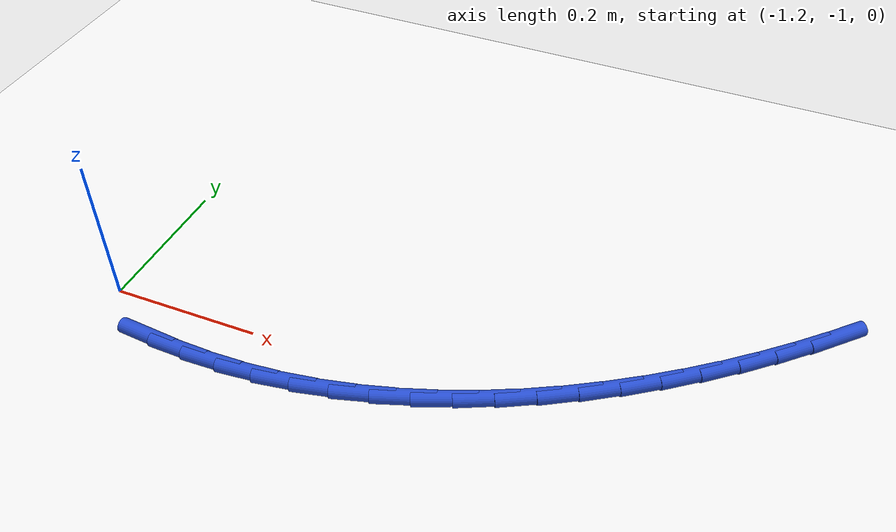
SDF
<sdf version="1.6">
 <world name="default">
  <model name="ground_plane">
   <static>1</static>
   <link name="link">
    <collision name="collision">
     <geometry><plane><normal>0 0 1</normal><size>100 100</size></plane></geometry>
     <surface><friction><ode><mu>100</mu><mu2>50</mu2></ode></friction></surface>
    </collision>
    <visual name="visual">
     <cast_shadows>0</cast_shadows>
     <geometry><plane><normal>0 0 1</normal><size>100 100</size></plane></geometry>
     <material>
      <script><uri>file://media/materials/scripts/gazebo.material</uri><name>Gazebo/WhiteGlow</name></script>
     </material>
    </visual>
   </link>
  </model>
  <model name="line">
   <link name="link_115">
    <pose>-1.1120504153098336 -1.0596894403482455 0.01 0 1.57 -0.08563635293027172</pose>
    <collision name="collision">
     <geometry><cylinder><radius>0.01</radius><length>0.08</length></cylinder></geometry>
    </collision>
    <visual name="visual">
     <material>
      <script><name>Gazebo/Blue</name><uri>file://media/materials/scripts/gazebo.material</uri></script>
     </material>
     <geometry><cylinder><radius>0.01</radius><length>0.08</length></cylinder></geometry>
    </visual>
   </link>
   <link name="link_116">
    <pose>-1.0641513624987304 -1.0638013972526978 0.01 0 1.57 -0.029323947734825474</pose>
    <collision name="collision">
     <geometry><cylinder><radius>0.01</radius><length>0.08</length></cylinder></geometry>
    </collision>
    <visual name="visual">
     <material>
      <script><name>Gazebo/Blue</name><uri>file://media/materials/scripts/gazebo.material</uri></script>
     </material>
     <geometry><cylinder><radius>0.01</radius><length>0.08</length></cylinder></geometry>
    </visual>
   </link>
   <link name="link_117">
    <pose>-1.01570058914053 -1.0652225725750548 0.01 0 1.57 0.02934717715262358</pose>
    <collision name="collision">
     <geometry><cylinder><radius>0.01</radius><length>0.08</length></cylinder></geometry>
    </collision>
    <visual name="visual">
     <material>
      <script><name>Gazebo/Blue</name><uri>file://media/materials/scripts/gazebo.material</uri></script>
     </material>
     <geometry><cylinder><radius>0.01</radius><length>0.08</length></cylinder></geometry>
    </visual>
   </link>
   <link name="link_118">
    <pose>-0.9670670747739666 -1.063794906327425 0.01 0 1.57 0.09127942299745762</pose>
    <collision name="collision">
     <geometry><cylinder><radius>0.01</radius><length>0.08</length></cylinder></geometry>
    </collision>
    <visual name="visual">
     <material>
      <script><name>Gazebo/Blue</name><uri>file://media/materials/scripts/gazebo.material</uri></script>
     </material>
     <geometry><cylinder><radius>0.01</radius><length>0.08</length></cylinder></geometry>
    </visual>
   </link>
   <link name="link_119">
    <pose>-0.9186198261999404 -1.059360346433116 0.01 0 1.57 0.15649676683214267</pose>
    <collision name="collision">
     <geometry><cylinder><radius>0.01</radius><length>0.08</length></cylinder></geometry>
    </collision>
    <visual name="visual">
     <material>
      <script><name>Gazebo/Blue</name><uri>file://media/materials/scripts/gazebo.material</uri></script>
     </material>
     <geometry><cylinder><radius>0.01</radius><length>0.08</length></cylinder></geometry>
    </visual>
   </link>
   <link name="link_120">
    <pose>-0.8706910919013868 -1.0517978148506764 0.01 0 1.57 0.22054614328382877</pose>
    <collision name="collision">
     <geometry><cylinder><radius>0.01</radius><length>0.08</length></cylinder></geometry>
    </collision>
    <visual name="visual">
     <material>
      <script><name>Gazebo/Blue</name><uri>file://media/materials/scripts/gazebo.material</uri></script>
     </material>
     <geometry><cylinder><radius>0.01</radius><length>0.08</length></cylinder></geometry>
    </visual>
   </link>
   <link name="link_121">
    <pose>-0.8234041615197801 -1.0411964186612968 0.01 0 1.57 0.28154985877062605</pose>
    <collision name="collision">
     <geometry><cylinder><radius>0.01</radius><length>0.08</length></cylinder></geometry>
    </collision>
    <visual name="visual">
     <material>
      <script><name>Gazebo/Blue</name><uri>file://media/materials/scripts/gazebo.material</uri></script>
     </material>
     <geometry><cylinder><radius>0.01</radius><length>0.08</length></cylinder></geometry>
    </visual>
   </link>
   <link name="link_122">
    <pose>-0.7768085859321072 -1.027719436448784 0.01 0 1.57 0.33939296246616724</pose>
    <collision name="collision">
     <geometry><cylinder><radius>0.01</radius><length>0.08</length></cylinder></geometry>
    </collision>
    <visual name="visual">
     <material>
      <script><name>Gazebo/Blue</name><uri>file://media/materials/scripts/gazebo.material</uri></script>
     </material>
     <geometry><cylinder><radius>0.01</radius><length>0.08</length></cylinder></geometry>
    </visual>
   </link>
   <link name="link_123">
    <pose>-0.7309538323398007 -1.011530230963552 0.01 0 1.57 0.39405738244302385</pose>
    <collision name="collision">
     <geometry><cylinder><radius>0.01</radius><length>0.08</length></cylinder></geometry>
    </collision>
    <visual name="visual">
     <material>
      <script><name>Gazebo/Blue</name><uri>file://media/materials/scripts/gazebo.material</uri></script>
     </material>
     <geometry><cylinder><radius>0.01</radius><length>0.08</length></cylinder></geometry>
    </visual>
   </link>
   <link name="link_124">
    <pose>-0.6858893679442949 -0.9927921649560139 0.01 0 1.57 0.44560150161589024</pose>
    <collision name="collision">
     <geometry><cylinder><radius>0.01</radius><length>0.08</length></cylinder></geometry>
    </collision>
    <visual name="visual">
     <material>
      <script><name>Gazebo/Blue</name><uri>file://media/materials/scripts/gazebo.material</uri></script>
     </material>
     <geometry><cylinder><radius>0.01</radius><length>0.08</length></cylinder></geometry>
    </visual>
   </link>
   <link name="link_125">
    <pose>-0.6416646599470244 -0.9716686011765829 0.01 0 1.57 0.4941418331430986</pose>
    <collision name="collision">
     <geometry><cylinder><radius>0.01</radius><length>0.08</length></cylinder></geometry>
    </collision>
    <visual name="visual">
     <material>
      <script><name>Gazebo/Blue</name><uri>file://media/materials/scripts/gazebo.material</uri></script>
     </material>
     <geometry><cylinder><radius>0.01</radius><length>0.08</length></cylinder></geometry>
    </visual>
   </link>
   <link name="link_126">
    <pose>-0.5983291755494214 -0.9483229023756716 0.01 0 1.57 0.5398364782810127</pose>
    <collision name="collision">
     <geometry><cylinder><radius>0.01</radius><length>0.08</length></cylinder></geometry>
    </collision>
    <visual name="visual">
     <material>
      <script><name>Gazebo/Blue</name><uri>file://media/materials/scripts/gazebo.material</uri></script>
     </material>
     <geometry><cylinder><radius>0.01</radius><length>0.08</length></cylinder></geometry>
    </visual>
   </link>
   <link name="link_127">
    <pose>-0.5559323819529214 -0.9229184313036943 0.01 0 1.57 0.5828712296993963</pose>
    <collision name="collision">
     <geometry><cylinder><radius>0.01</radius><length>0.08</length></cylinder></geometry>
    </collision>
    <visual name="visual">
     <material>
      <script><name>Gazebo/Blue</name><uri>file://media/materials/scripts/gazebo.material</uri></script>
     </material>
     <geometry><cylinder><radius>0.01</radius><length>0.08</length></cylinder></geometry>
    </visual>
   </link>
   <link name="link_128">
    <pose>-0.5145237463589568 -0.895618550711063 0.01 0 1.57 0.6234485823179287</pose>
    <collision name="collision">
     <geometry><cylinder><radius>0.01</radius><length>0.08</length></cylinder></geometry>
    </collision>
    <visual name="visual">
     <material>
      <script><name>Gazebo/Blue</name><uri>file://media/materials/scripts/gazebo.material</uri></script>
     </material>
     <geometry><cylinder><radius>0.01</radius><length>0.08</length></cylinder></geometry>
    </visual>
   </link>
   <link name="link_129">
    <pose>-0.474152735968962 -0.8665866233481915 0.01 0 1.57 0.6617795307186891</pose>
    <collision name="collision">
     <geometry><cylinder><radius>0.01</radius><length>0.08</length></cylinder></geometry>
    </collision>
    <visual name="visual">
     <material>
      <script><name>Gazebo/Blue</name><uri>file://media/materials/scripts/gazebo.material</uri></script>
     </material>
     <geometry><cylinder><radius>0.01</radius><length>0.08</length></cylinder></geometry>
    </visual>
   </link>
   <link name="link_130">
    <pose>-0.4348688179843716 -0.8359860119654935 0.01 0 1.57 0.698077831518135</pose>
    <collision name="collision">
     <geometry><cylinder><radius>0.01</radius><length>0.08</length></cylinder></geometry>
    </collision>
    <visual name="visual">
     <material>
      <script><name>Gazebo/Blue</name><uri>file://media/materials/scripts/gazebo.material</uri></script>
     </material>
     <geometry><cylinder><radius>0.01</radius><length>0.08</length></cylinder></geometry>
    </visual>
   </link>
   <link name="link_131">
    <pose>-0.39672145960661803 -0.8039800793133811 0.01 0 1.57 0.732556338422635</pose>
    <collision name="collision">
     <geometry><cylinder><radius>0.01</radius><length>0.08</length></cylinder></geometry>
    </collision>
    <visual name="visual">
     <material>
      <script><name>Gazebo/Blue</name><uri>file://media/materials/scripts/gazebo.material</uri></script>
     </material>
     <geometry><cylinder><radius>0.01</radius><length>0.08</length></cylinder></geometry>
    </visual>
   </link>
   <link name="link_132">
    <pose>-0.35976012803713636 -0.770732188142269 0.01 0 1.57 0.7654296766377761</pose>
    <collision name="collision">
     <geometry><cylinder><radius>0.01</radius><length>0.08</length></cylinder></geometry>
    </collision>
    <visual name="visual">
     <material>
      <script><name>Gazebo/Blue</name><uri>file://media/materials/scripts/gazebo.material</uri></script>
     </material>
     <geometry><cylinder><radius>0.01</radius><length>0.08</length></cylinder></geometry>
    </visual>
   </link>
   <link name="link_133">
    <pose>-0.3240343714454808 -0.7364054596266054 0.01 0 1.57 0.7979567552629167</pose>
    <collision name="collision">
     <geometry><cylinder><radius>0.01</radius><length>0.08</length></cylinder></geometry>
    </collision>
    <visual name="visual">
     <material>
      <script><name>Gazebo/Blue</name><uri>file://media/materials/scripts/gazebo.material</uri></script>
     </material>
     <geometry><cylinder><radius>0.01</radius><length>0.08</length></cylinder></geometry>
    </visual>
   </link>
  </model>
 </world>
</sdf>
